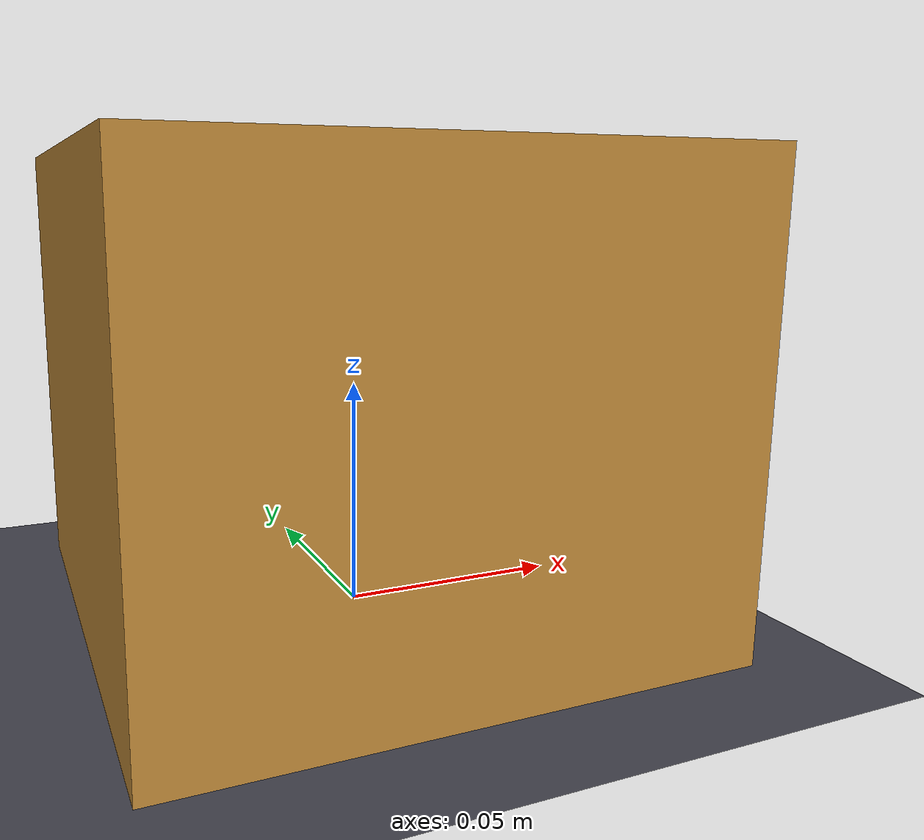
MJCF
<mujoco model="rail">
  <option timestep="0.00025" integrator="implicitfast"/>
  <worldbody>
    <light pos="0 0 2"/>
    <geom name="floor" type="plane" size="2 2 0.1" rgba="0.3 0.3 0.35 1"/>
    <body name="carriage" pos="0 0 0.05">
      <joint name="rail" type="slide" axis="1 0 0" range="0 1.45" damping="20"/>
      <geom type="box" size="0.06 0.06 0.05" mass="8" rgba="0.7 0.5 0.2 1"/>
    </body>
  </worldbody>
  <actuator>
    <!-- Position servo: kp/kv tuned so the carriage tracks the streamed
         setpoint with a small, physical following error. -->
    <position name="rail_servo" joint="rail" kp="6000" kv="300" ctrlrange="0 1.45"/>
  </actuator>
</mujoco>
